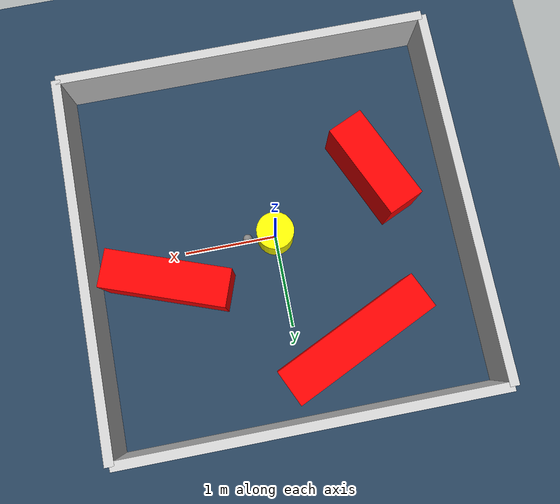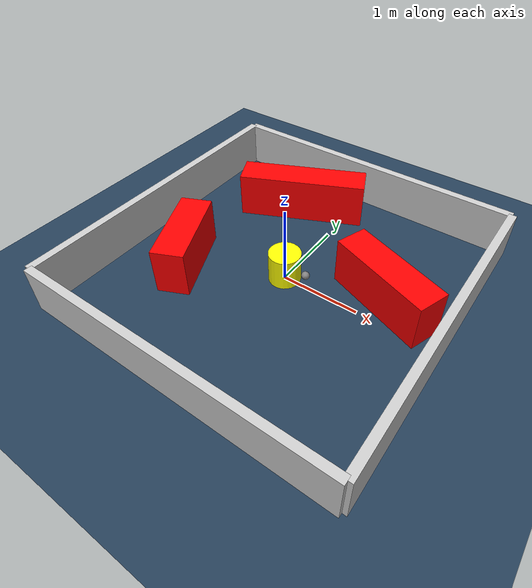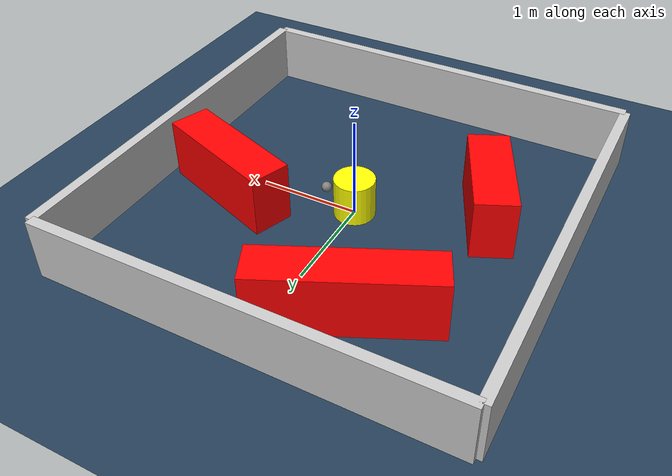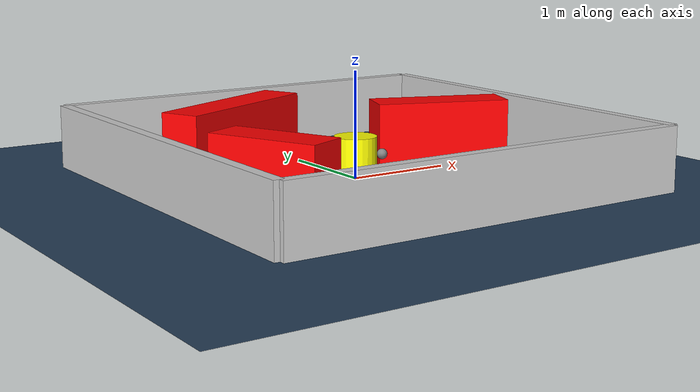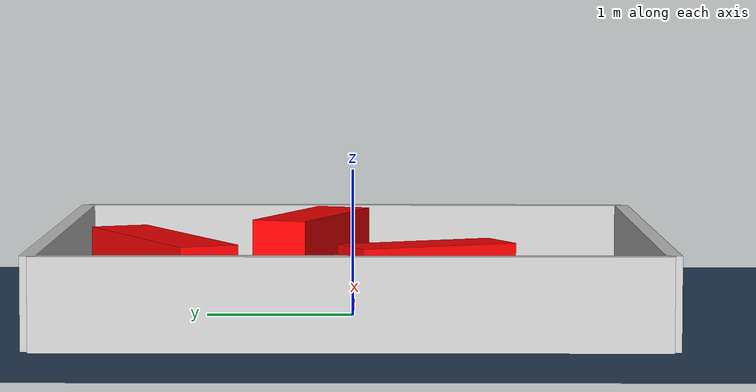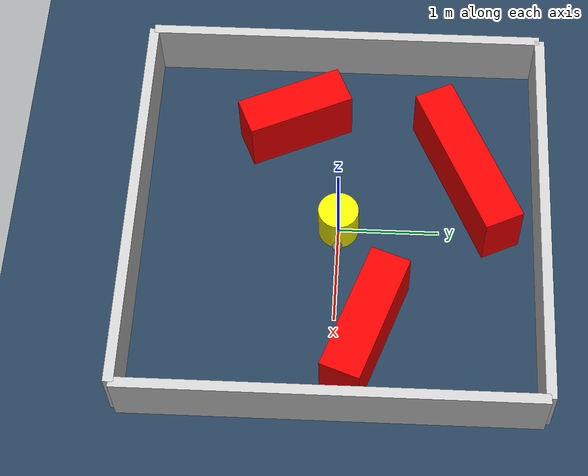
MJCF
<?xml version="1.0" ?>
<mujoco model="generated_environment">
  <option timestep="0.01" integrator="RK4" cone="elliptic"/>
  <default>
    <geom density="1"/>
  </default>
  <asset>
    <texture builtin="gradient" height="3072" rgb1="0.3 0.5 0.7" rgb2="0 0 0" type="skybox" width="512"/>
    <texture builtin="checker" height="300" mark="edge" markrgb="0.8 0.8 0.8" name="groundplane" rgb1="0.2 0.3 0.4" rgb2="0.1 0.2 0.3" type="2d" width="300"/>
    <material name="groundplane" reflectance="0.2" texrepeat="5 5" texture="groundplane" texuniform="true"/>
    <material name="robot" rgba="0.0 1.0 0.0 1"/>
  </asset>
  <worldbody>
    <light dir="0 0 -1" directional="true" pos="0 0 1.5"/>
    <geom condim="4" friction="1.0 0.005 0.001" material="groundplane" name="floor" size="0 0 0.05" type="plane"/>
    <body name="walls">
      <geom name="wall_1" condim="4" pos="-2.0 0.0 0.3" rgba="0.800000011920929 0.800000011920929 0.800000011920929 1.0" size="0.05 2.0 0.3" type="box"/>
      <geom name="wall_2" condim="4" pos="2.0 0.0 0.3" rgba="0.800000011920929 0.800000011920929 0.800000011920929 1.0" size="0.05 2.0 0.3" type="box"/>
      <geom name="wall_3" condim="4" pos="0.0 -2.0 0.3" rgba="0.800000011920929 0.800000011920929 0.800000011920929 1.0" size="2.0 0.05 0.3" type="box"/>
      <geom name="wall_4" condim="4" pos="0.0 2.0 0.3" rgba="0.800000011920929 0.800000011920929 0.800000011920929 1.0" size="2.0 0.05 0.3" type="box"/>
    </body>
    <body name="robot">
      <joint name="joint_x" type="slide" pos="0 0 0" axis="1 0 0"/>
      <joint name="joint_y" type="slide" pos="0 0 0" axis="0 1 0"/>
      <geom name="robot" type="sphere" pos="0.3 0.0 0.2" size="0.05" mass="5." friction="1.0 0.005 0.0001" condim="4" rgba="0.5 0.5 0.5 1.0"/>
      <site name="sensor_ball"/>
    </body>
    <body name="obstacle_movable_1">
      <geom name="obstacle_movable_1" condim="4" pos="0.0 0.0 0.2" euler="0 0 0.0" friction="1.0 0.005 0.001" rgba="1.0 1.0 0.0 1.0" size="0.2 0.2 0.0" type="cylinder" mass="0.1"/>
      <joint type="free"/>
    </body>
    <body name="obstacle_2_static">
      <geom name="obstacle_2_static" condim="4" pos="-1.1546341629309855 -0.48650332708807165 0.3" euler="0 0 294.2586640252746" friction="1.0 0.005 0.001" rgba="1 0 0 1" size="0.5412600688529993 0.2 0.3" type="box"/>
    </body>
    <body name="obstacle_3_static">
      <geom name="obstacle_3_static" condim="4" pos="1.1925625338656958 0.3026200129444019 0.3" euler="0 0 160.09925289482305" friction="1.0 0.005 0.001" rgba="1 0 0 1" size="0.6554551304339008 0.2 0.3" type="box"/>
    </body>
    <body name="obstacle_4_static">
      <geom name="obstacle_4_static" condim="4" pos="-0.5849688243875724 1.2616666085370019 0.3" euler="0 0 24.954828140466454" friction="1.0 0.005 0.001" rgba="1 0 0 1" size="0.831711214921578 0.2 0.3" type="box"/>
    </body>
  </worldbody>
  <actuator>
    <motor name="actuator_x" joint="joint_x" gear="1" ctrlrange="-1 1"/>
    <motor name="actuator_y" joint="joint_y" gear="1" ctrlrange="-1 1"/>
  </actuator>
</mujoco>
